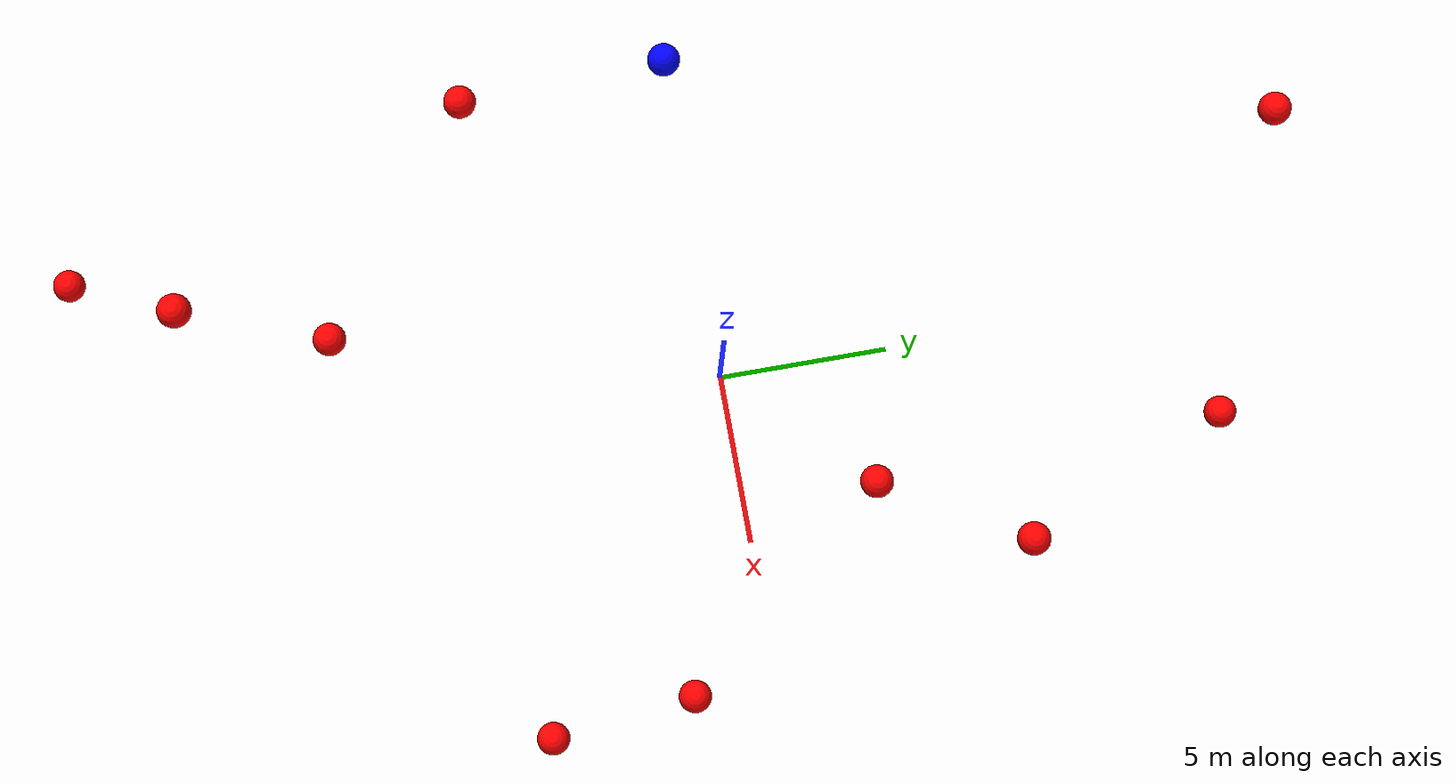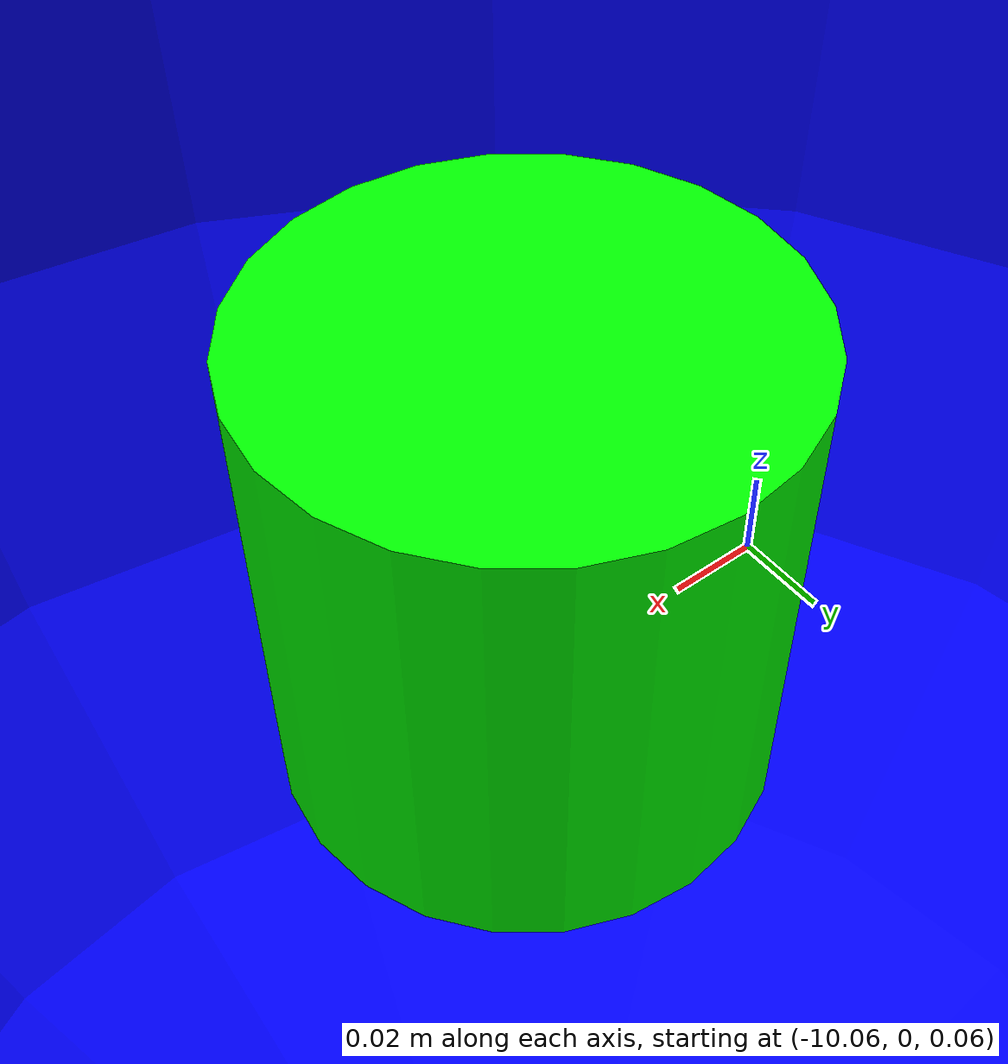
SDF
<?xml version="1.0" ?>
<sdf version="1.8">
    <world name="3d_world">
        <physics name="1ms" type="ode">
            <max_step_size>0.001</max_step_size>
            <real_time_factor>1.0</real_time_factor>
            <real_time_update_rate>1000.0</real_time_update_rate>
        </physics>
        <gravity>0 0 0</gravity>

        <plugin
            filename="gz-sim-physics-system"
            name="gz::sim::v8::systems::Physics">
        </plugin>
        <plugin
            filename="libignition-gazebo-user-commands-system.so"
            name="ignition::gazebo::systems::UserCommands">
        </plugin>
        <plugin
            filename="gz-sim-scene-broadcaster-system"
            name="gz::sim::systems::SceneBroadcaster">
        </plugin>
        <plugin
            filename="gz-sim-sensors-system"
            name="gz::sim::systems::Sensors">
            <render_engine>ogre2</render_engine>
        </plugin>

        <light type="directional" name="sun">
            <cast_shadows>true</cast_shadows>
            <pose>0 0 10 0 0 0</pose>
            <diffuse>0.8 0.8 0.8 1</diffuse>
            <specular>0.2 0.2 0.2 1</specular>
            <attenuation>
                <range>1000</range>
                <constant>0.9</constant>
                <linear>0.01</linear>
                <quadratic>0.001</quadratic>
            </attenuation>
            <direction>-0.5 0.1 -0.9</direction>
        </light>

        <!-- AGENTE -->
        <model name='agente' canonical_link='chassis'>
            <pose relative_to='world'>-10.0 0 0.0 0 0 0</pose>
            <link name='chassis'>
                <pose relative_to='__model__'>0.0 0 0.0 0 0 0</pose>
                <inertial>
                    <mass>1.14395</mass>
                    <inertia>
                        <ixx>0.095329</ixx>
                        <ixy>0</ixy>
                        <ixz>0</ixz>
                        <iyy>0.381317</iyy>
                        <iyz>0</iyz>
                        <izz>0.476646</izz>
                    </inertia>
                </inertial>
                <visual name='visual'>
                    <geometry>
                        <sphere>
                            <radius>0.5</radius>
                        </sphere>
                    </geometry>
                    <material>
                        <ambient>0.0 0.0 1.0 1</ambient>
                        <diffuse>0.0 0.0 1.0 1</diffuse>
                        <specular>0.0 0.0 1.0 1</specular>
                    </material>
                </visual>
                <collision name='collision'>
                    <geometry>
                        <sphere>
                            <radius>0.5</radius>
                        </sphere>
                    </geometry>
                </collision>
                <enable_gravity>false</enable_gravity>
            </link>

            <link name='lidar_link'>
                <pose relative_to='chassis'>0.0 0 0.1 0 0 0</pose>
                <inertial>
                    <mass>0.1</mass>
                    <inertia>
                        <ixx>0.000166667</ixx>
                        <iyy>0.000166667</iyy>
                        <izz>0.000166667</izz>
                    </inertia>
                </inertial>
                <collision name='collision'>
                    <geometry>
                        <cylinder>
                            <radius>0.05</radius>
                            <length>0.1</length>
                        </cylinder>
                    </geometry>
                </collision>
                <visual name='visual'>
                    <geometry>
                        <cylinder>
                            <radius>0.05</radius>
                            <length>0.1</length>
                        </cylinder>
                    </geometry>
                    <material>
                        <ambient>0.0 1.0 0.0 1</ambient>
                        <diffuse>0.0 1.0 0.0 1</diffuse>
                        <specular>0.0 1.0 0.0 1</specular>
                    </material>
                </visual>
                <sensor name="lidar" type="gpu_lidar">
                    <topic>scan</topic>
                    <update_rate>10</update_rate>
                    <lidar>
                        <scan>
                            <horizontal>
                                <samples>5000</samples>
                                <resolution>1</resolution>
                                <min_angle>-3.14159</min_angle>
                                <max_angle>3.14159</max_angle>
                            </horizontal>
                        </scan>
                        <range>
                            <min>0.1</min>
                            <max>10.0</max>
                            <resolution>0.01</resolution>
                        </range>
                    </lidar>
                    <visualize>true</visualize>
                    <always_on>true</always_on>
                    <update_rate>10</update_rate>
                    <pose_frame>lidar</pose_frame>
                </sensor>
                <enable_gravity>false</enable_gravity>
            </link>

            <joint name="lidar_joint" type="fixed">
                <parent>chassis</parent>
                <child>lidar_link</child>
            </joint>

            <plugin
                filename="ignition-gazebo-joint-state-publisher-system"
                name="ignition::gazebo::systems::JointStatePublisher">
            </plugin>
            <plugin
                filename="ignition-gazebo-odometry-publisher-system"
                name="ignition::gazebo::systems::OdometryPublisher">
                <dimensions>3</dimensions>
            </plugin>
            <plugin
                filename="ignition-gazebo-velocity-control-system"
                name="ignition::gazebo::systems::VelocityControl">
                <initial_linear>0.0 0 0</initial_linear>
                <initial_angular>0 0 0.0</initial_angular>
            </plugin>
            <plugin
                filename="libignition-gazebo-pose-publisher-system.so"
                name="ignition::gazebo::systems::PosePublisher">
                <topic>/agente/pose</topic>
                <frame_id>agente</frame_id>
                <update_rate>30</update_rate>
            </plugin>
        </model>

        <!-- OBSTACLE 1 -->
        <model name='obstacle_1' canonical_link='obstacle'>
            <static>false</static>
            <pose relative_to='world'>9.47 -6.69 -3.15 0 0 0</pose>
            <link name='obstacle'>
                <pose relative_to='__model__'>0.0 0 0.0 0 0 0</pose>
                <visual name='visual'>
                    <geometry>
                        <sphere>
                            <radius>0.50</radius>
                        </sphere>
                    </geometry>
                    <material>
                        <ambient>1.0 0.0 0.0 1</ambient>
                        <diffuse>1.0 0.0 0.0 1</diffuse>
                        <specular>1.0 0.0 0.0 1</specular>
                    </material>
                </visual>
                <collision name='collision'>
                    <geometry>
                        <sphere>
                            <radius>0.50</radius>
                        </sphere>
                    </geometry>
                </collision>
                <enable_gravity>false</enable_gravity>
            </link>

            <plugin
                filename="ignition-gazebo-velocity-control-system"
                name="ignition::gazebo::systems::VelocityControl">
                <initial_linear>-1.78 0.83 0.39</initial_linear>
                <initial_angular>0 0 0</initial_angular>
            </plugin>

            <plugin
                filename="ignition-gazebo-odometry-publisher-system"
                name="ignition::gazebo::systems::OdometryPublisher">
                <dimensions>3</dimensions>
            </plugin>
        </model>

        <!-- OBSTACLE 2 -->
        <model name='obstacle_2' canonical_link='obstacle'>
            <static>false</static>
            <pose relative_to='world'>-9.84 -6.34 -0.36 0 0 0</pose>
            <link name='obstacle'>
                <pose relative_to='__model__'>0.0 0 0.0 0 0 0</pose>
                <visual name='visual'>
                    <geometry>
                        <sphere>
                            <radius>0.50</radius>
                        </sphere>
                    </geometry>
                    <material>
                        <ambient>1.0 0.0 0.0 1</ambient>
                        <diffuse>1.0 0.0 0.0 1</diffuse>
                        <specular>1.0 0.0 0.0 1</specular>
                    </material>
                </visual>
                <collision name='collision'>
                    <geometry>
                        <sphere>
                            <radius>0.50</radius>
                        </sphere>
                    </geometry>
                </collision>
                <enable_gravity>false</enable_gravity>
            </link>

            <plugin
                filename="ignition-gazebo-velocity-control-system"
                name="ignition::gazebo::systems::VelocityControl">
                <initial_linear>1.54 1.28 0.07</initial_linear>
                <initial_angular>0 0 0</initial_angular>
            </plugin>

            <plugin
                filename="ignition-gazebo-odometry-publisher-system"
                name="ignition::gazebo::systems::OdometryPublisher">
                <dimensions>3</dimensions>
            </plugin>
        </model>

        <!-- OBSTACLE 3 -->
        <model name='obstacle_3' canonical_link='obstacle'>
            <static>false</static>
            <pose relative_to='world'>3.77 4.07 -0.58 0 0 0</pose>
            <link name='obstacle'>
                <pose relative_to='__model__'>0.0 0 0.0 0 0 0</pose>
                <visual name='visual'>
                    <geometry>
                        <sphere>
                            <radius>0.50</radius>
                        </sphere>
                    </geometry>
                    <material>
                        <ambient>1.0 0.0 0.0 1</ambient>
                        <diffuse>1.0 0.0 0.0 1</diffuse>
                        <specular>1.0 0.0 0.0 1</specular>
                    </material>
                </visual>
                <collision name='collision'>
                    <geometry>
                        <sphere>
                            <radius>0.50</radius>
                        </sphere>
                    </geometry>
                </collision>
                <enable_gravity>false</enable_gravity>
            </link>

            <plugin
                filename="ignition-gazebo-velocity-control-system"
                name="ignition::gazebo::systems::VelocityControl">
                <initial_linear>-1.30 -1.12 0.16</initial_linear>
                <initial_angular>0 0 0</initial_angular>
            </plugin>

            <plugin
                filename="ignition-gazebo-odometry-publisher-system"
                name="ignition::gazebo::systems::OdometryPublisher">
                <dimensions>3</dimensions>
            </plugin>
        </model>

        <!-- OBSTACLE 4 -->
        <model name='obstacle_4' canonical_link='obstacle'>
            <static>false</static>
            <pose relative_to='world'>-3.89 -15.21 3.25 0 0 0</pose>
            <link name='obstacle'>
                <pose relative_to='__model__'>0.0 0 0.0 0 0 0</pose>
                <visual name='visual'>
                    <geometry>
                        <sphere>
                            <radius>0.50</radius>
                        </sphere>
                    </geometry>
                    <material>
                        <ambient>1.0 0.0 0.0 1</ambient>
                        <diffuse>1.0 0.0 0.0 1</diffuse>
                        <specular>1.0 0.0 0.0 1</specular>
                    </material>
                </visual>
                <collision name='collision'>
                    <geometry>
                        <sphere>
                            <radius>0.50</radius>
                        </sphere>
                    </geometry>
                </collision>
                <enable_gravity>false</enable_gravity>
            </link>

            <plugin
                filename="ignition-gazebo-velocity-control-system"
                name="ignition::gazebo::systems::VelocityControl">
                <initial_linear>0.39 1.92 -0.41</initial_linear>
                <initial_angular>0 0 0</initial_angular>
            </plugin>

            <plugin
                filename="ignition-gazebo-odometry-publisher-system"
                name="ignition::gazebo::systems::OdometryPublisher">
                <dimensions>3</dimensions>
            </plugin>
        </model>

        <!-- OBSTACLE 5 -->
        <model name='obstacle_5' canonical_link='obstacle'>
            <static>false</static>
            <pose relative_to='world'>8.95 -2.27 -3.01 0 0 0</pose>
            <link name='obstacle'>
                <pose relative_to='__model__'>0.0 0 0.0 0 0 0</pose>
                <visual name='visual'>
                    <geometry>
                        <sphere>
                            <radius>0.50</radius>
                        </sphere>
                    </geometry>
                    <material>
                        <ambient>1.0 0.0 0.0 1</ambient>
                        <diffuse>1.0 0.0 0.0 1</diffuse>
                        <specular>1.0 0.0 0.0 1</specular>
                    </material>
                </visual>
                <collision name='collision'>
                    <geometry>
                        <sphere>
                            <radius>0.50</radius>
                        </sphere>
                    </geometry>
                </collision>
                <enable_gravity>false</enable_gravity>
            </link>

            <plugin
                filename="ignition-gazebo-velocity-control-system"
                name="ignition::gazebo::systems::VelocityControl">
                <initial_linear>-1.90 0.37 0.49</initial_linear>
                <initial_angular>0 0 0</initial_angular>
            </plugin>

            <plugin
                filename="ignition-gazebo-odometry-publisher-system"
                name="ignition::gazebo::systems::OdometryPublisher">
                <dimensions>3</dimensions>
            </plugin>
        </model>

        <!-- OBSTACLE 6 -->
        <model name='obstacle_6' canonical_link='obstacle'>
            <static>false</static>
            <pose relative_to='world'>-5.29 17.93 0.24 0 0 0</pose>
            <link name='obstacle'>
                <pose relative_to='__model__'>0.0 0 0.0 0 0 0</pose>
                <visual name='visual'>
                    <geometry>
                        <sphere>
                            <radius>0.50</radius>
                        </sphere>
                    </geometry>
                    <material>
                        <ambient>1.0 0.0 0.0 1</ambient>
                        <diffuse>1.0 0.0 0.0 1</diffuse>
                        <specular>1.0 0.0 0.0 1</specular>
                    </material>
                </visual>
                <collision name='collision'>
                    <geometry>
                        <sphere>
                            <radius>0.50</radius>
                        </sphere>
                    </geometry>
                </collision>
                <enable_gravity>false</enable_gravity>
            </link>

            <plugin
                filename="ignition-gazebo-velocity-control-system"
                name="ignition::gazebo::systems::VelocityControl">
                <initial_linear>0.63 -1.90 -0.03</initial_linear>
                <initial_angular>0 0 0</initial_angular>
            </plugin>

            <plugin
                filename="ignition-gazebo-odometry-publisher-system"
                name="ignition::gazebo::systems::OdometryPublisher">
                <dimensions>3</dimensions>
            </plugin>
        </model>

        <!-- OBSTACLE 7 -->
        <model name='obstacle_7' canonical_link='obstacle'>
            <static>false</static>
            <pose relative_to='world'>6.31 8.21 0.12 0 0 0</pose>
            <link name='obstacle'>
                <pose relative_to='__model__'>0.0 0 0.0 0 0 0</pose>
                <visual name='visual'>
                    <geometry>
                        <sphere>
                            <radius>0.50</radius>
                        </sphere>
                    </geometry>
                    <material>
                        <ambient>1.0 0.0 0.0 1</ambient>
                        <diffuse>1.0 0.0 0.0 1</diffuse>
                        <specular>1.0 0.0 0.0 1</specular>
                    </material>
                </visual>
                <collision name='collision'>
                    <geometry>
                        <sphere>
                            <radius>0.50</radius>
                        </sphere>
                    </geometry>
                </collision>
                <enable_gravity>false</enable_gravity>
            </link>

            <plugin
                filename="ignition-gazebo-velocity-control-system"
                name="ignition::gazebo::systems::VelocityControl">
                <initial_linear>-1.10 -1.67 -0.02</initial_linear>
                <initial_angular>0 0 0</initial_angular>
            </plugin>

            <plugin
                filename="ignition-gazebo-odometry-publisher-system"
                name="ignition::gazebo::systems::OdometryPublisher">
                <dimensions>3</dimensions>
            </plugin>
        </model>

        <!-- OBSTACLE 8 -->
        <model name='obstacle_8' canonical_link='obstacle'>
            <static>false</static>
            <pose relative_to='world'>-7.06 -19.45 -3.74 0 0 0</pose>
            <link name='obstacle'>
                <pose relative_to='__model__'>0.0 0 0.0 0 0 0</pose>
                <visual name='visual'>
                    <geometry>
                        <sphere>
                            <radius>0.50</radius>
                        </sphere>
                    </geometry>
                    <material>
                        <ambient>1.0 0.0 0.0 1</ambient>
                        <diffuse>1.0 0.0 0.0 1</diffuse>
                        <specular>1.0 0.0 0.0 1</specular>
                    </material>
                </visual>
                <collision name='collision'>
                    <geometry>
                        <sphere>
                            <radius>0.50</radius>
                        </sphere>
                    </geometry>
                </collision>
                <enable_gravity>false</enable_gravity>
            </link>

            <plugin
                filename="ignition-gazebo-velocity-control-system"
                name="ignition::gazebo::systems::VelocityControl">
                <initial_linear>1.10 1.64 0.32</initial_linear>
                <initial_angular>0 0 0</initial_angular>
            </plugin>

            <plugin
                filename="ignition-gazebo-odometry-publisher-system"
                name="ignition::gazebo::systems::OdometryPublisher">
                <dimensions>3</dimensions>
            </plugin>
        </model>

        <!-- OBSTACLE 9 -->
        <model name='obstacle_9' canonical_link='obstacle'>
            <static>false</static>
            <pose relative_to='world'>2.93 15.41 -3.96 0 0 0</pose>
            <link name='obstacle'>
                <pose relative_to='__model__'>0.0 0 0.0 0 0 0</pose>
                <visual name='visual'>
                    <geometry>
                        <sphere>
                            <radius>0.50</radius>
                        </sphere>
                    </geometry>
                    <material>
                        <ambient>1.0 0.0 0.0 1</ambient>
                        <diffuse>1.0 0.0 0.0 1</diffuse>
                        <specular>1.0 0.0 0.0 1</specular>
                    </material>
                </visual>
                <collision name='collision'>
                    <geometry>
                        <sphere>
                            <radius>0.50</radius>
                        </sphere>
                    </geometry>
                </collision>
                <enable_gravity>false</enable_gravity>
            </link>

            <plugin
                filename="ignition-gazebo-velocity-control-system"
                name="ignition::gazebo::systems::VelocityControl">
                <initial_linear>-0.18 -1.93 0.50</initial_linear>
                <initial_angular>0 0 0</initial_angular>
            </plugin>

            <plugin
                filename="ignition-gazebo-odometry-publisher-system"
                name="ignition::gazebo::systems::OdometryPublisher">
                <dimensions>3</dimensions>
            </plugin>
        </model>

        <!-- OBSTACLE 10 -->
        <model name='obstacle_10' canonical_link='obstacle'>
            <static>false</static>
            <pose relative_to='world'>-3.25 -11.34 -0.65 0 0 0</pose>
            <link name='obstacle'>
                <pose relative_to='__model__'>0.0 0 0.0 0 0 0</pose>
                <visual name='visual'>
                    <geometry>
                        <sphere>
                            <radius>0.50</radius>
                        </sphere>
                    </geometry>
                    <material>
                        <ambient>1.0 0.0 0.0 1</ambient>
                        <diffuse>1.0 0.0 0.0 1</diffuse>
                        <specular>1.0 0.0 0.0 1</specular>
                    </material>
                </visual>
                <collision name='collision'>
                    <geometry>
                        <sphere>
                            <radius>0.50</radius>
                        </sphere>
                    </geometry>
                </collision>
                <enable_gravity>false</enable_gravity>
            </link>

            <plugin
                filename="ignition-gazebo-velocity-control-system"
                name="ignition::gazebo::systems::VelocityControl">
                <initial_linear>0.76 1.85 0.11</initial_linear>
                <initial_angular>0 0 0</initial_angular>
            </plugin>

            <plugin
                filename="ignition-gazebo-odometry-publisher-system"
                name="ignition::gazebo::systems::OdometryPublisher">
                <dimensions>3</dimensions>
            </plugin>
        </model>

    </world>
</sdf>
